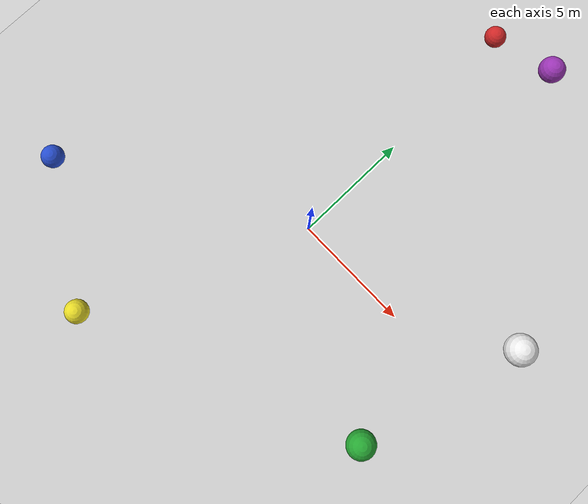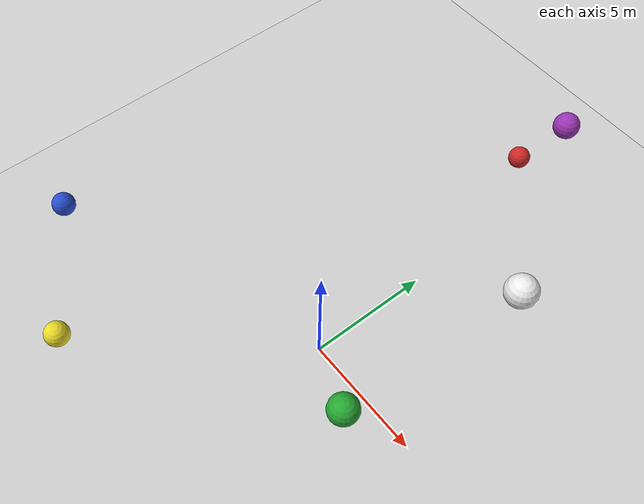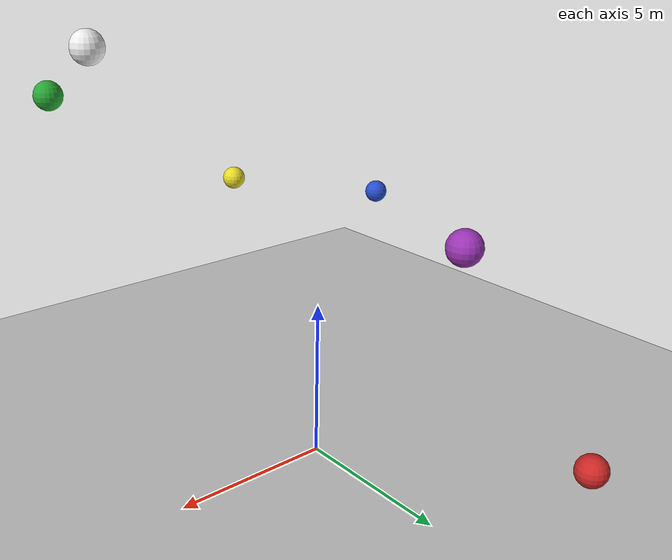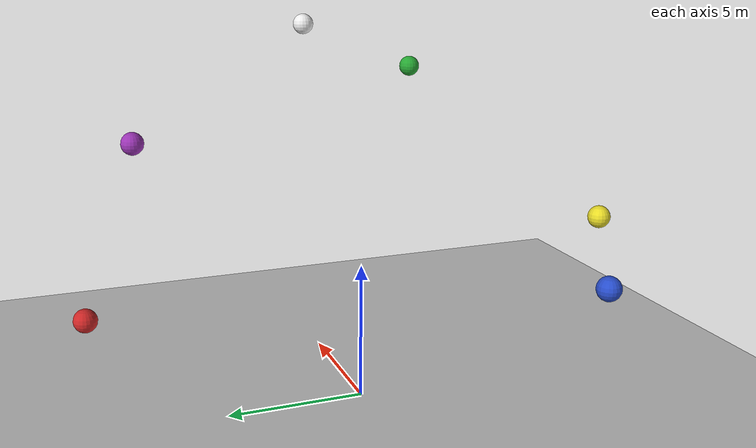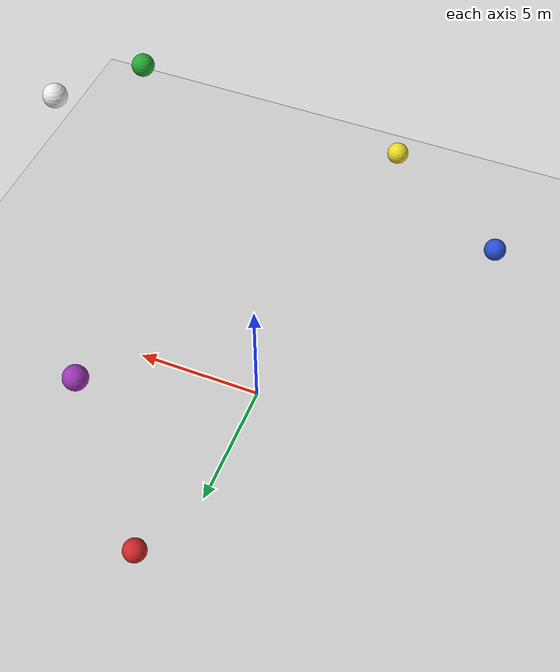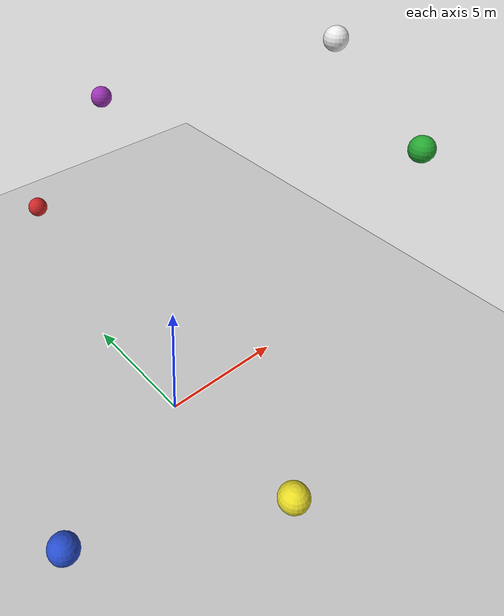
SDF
<?xml version="1.0" ?>
<sdf version="1.4">
  <world name="default">
    <scene>
    <shadows>false</shadows>
    <grid>false</grid>
    </scene>
    <include>
      <uri>model://ground_plane</uri>
    </include>
    <include>
      <uri>model://sun</uri>
    </include>

    <!-- Only one ROS interface plugin is required per world -->
    <plugin name="ros_interface_plugin" filename="librotors_gazebo_ros_interface_plugin.so"/>

    <spherical_coordinates>
      <surface_model>EARTH_WGS84</surface_model>
      <latitude_deg>47.3667</latitude_deg>
      <longitude_deg>8.5500</longitude_deg>
      <elevation>500.0</elevation>
      <heading_deg>0</heading_deg>
    </spherical_coordinates>

    <physics type='ode'>
      <ode>
        <solver>
          <type>quick</type>
          <iters>1000</iters>
          <sor>1.3</sor>
        </solver>
        <constraints>
          <cfm>0</cfm>
          <erp>0.2</erp>
          <contact_max_correcting_vel>100</contact_max_correcting_vel>
          <contact_surface_layer>0.001</contact_surface_layer>
        </constraints>
      </ode>
      <max_step_size>0.002</max_step_size>
      <real_time_factor>0</real_time_factor>
      <real_time_update_rate>1000</real_time_update_rate>
      <gravity>0 0 -9.81</gravity>
    </physics>

    <!-- Obstacle 0: (0.000, 9.583, 4.250), Plugin R=9.583 -->
    <model name='sphere_obstacle_0'>
      <static>false</static>
      <pose>0.000 9.583 4.250 0 0 0</pose> <!-- x y z roll pitch yaw -->
      <link name='link'>
        <kinematic>true</kinematic>
        <collision name='collision'>
          <geometry>
            <sphere><radius>0.4</radius></sphere>
          </geometry>
        </collision>
        <visual name='visual'>
          <geometry>
            <sphere><radius>0.4</radius></sphere>
          </geometry>
          <material>
            <script>
              <uri>file://media/materials/scripts/gazebo.material</uri>
              <name>Gazebo/Red</name>
            </script>
          </material>
        </visual>
      </link>
      <plugin name="circle_motion" filename="libcircle_motion_plugin.so">
        <center_x>0.0</center_x>
        <center_y>0.0</center_y>
        <center_z>4.250</center_z>
        <radius>9.583</radius> <!-- sqrt(x^2+y^2) -->
        <speed>0</speed>
      </plugin>
    </model>

    <!-- Obstacle 1: (-7.281, -5.290, 6.000), Plugin R=9.000 -->
    <model name='sphere_obstacle_1'>
      <static>false</static>
      <pose>-7.281 -5.290 6.000 0 0 0</pose>
      <link name='link'>
        <kinematic>true</kinematic>
        <collision name='collision'>
          <geometry>
            <sphere><radius>0.4</radius></sphere>
          </geometry>
        </collision>
        <visual name='visual'>
          <geometry>
            <sphere><radius>0.4</radius></sphere>
          </geometry>
          <material>
            <script>
              <uri>file://media/materials/scripts/gazebo.material</uri>
              <name>Gazebo/Blue</name>
            </script>
          </material>
        </visual>
      </link>
      <plugin name="circle_motion" filename="libcircle_motion_plugin.so">
        <center_x>0.0</center_x>
        <center_y>0.0</center_y>
        <center_z>6.000</center_z>
        <radius>9.000</radius> <!-- sqrt(x^2+y^2) -->
        <speed>0</speed>
      </plugin>
    </model>

    <!-- Obstacle 2: (-2.601, -8.005, 7.750), Plugin R=8.417 -->
    <model name='sphere_obstacle_2'> <!-- Was sphere_obstacle_3 in original -->
      <static>false</static>
      <pose>-2.601 -8.005 6.750 0 0 0</pose>
      <link name='link'>
        <kinematic>true</kinematic>
        <collision name='collision'>
          <geometry>
            <sphere><radius>0.4</radius></sphere>
          </geometry>
        </collision>
        <visual name='visual'>
          <geometry>
            <sphere><radius>0.4</radius></sphere>
          </geometry>
          <material>
            <script>
              <uri>file://media/materials/scripts/gazebo.material</uri>
              <name>Gazebo/Yellow</name>
            </script>
          </material>
        </visual>
      </link>
      <plugin name="circle_motion" filename="libcircle_motion_plugin.so">
        <center_x>0.0</center_x>
        <center_y>0.0</center_y>
        <center_z>6.750</center_z>
        <radius>8.417</radius> <!-- sqrt(x^2+y^2) -->
        <speed>0</speed>
      </plugin>
    </model>

    <!-- Obstacle 3: (2.421, 7.450, 9.500), Plugin R=7.833 -->
    <model name='sphere_obstacle_3'> <!-- Was sphere_obstacle_4 in original -->
      <static>false</static>
      <pose>2.421 7.450 9.500 0 0 0</pose>
      <link name='link'>
        <kinematic>true</kinematic>
        <collision name='collision'>
          <geometry>
            <sphere><radius>0.4</radius></sphere>
          </geometry>
        </collision>
        <visual name='visual'>
          <geometry>
            <sphere><radius>0.4</radius></sphere>
          </geometry>
          <material>
            <script>
              <uri>file://media/materials/scripts/gazebo.material</uri>
              <name>Gazebo/Purple</name>
            </script>
          </material>
        </visual>
      </link>
      <plugin name="circle_motion" filename="libcircle_motion_plugin.so">
        <center_x>0.0</center_x>
        <center_y>0.0</center_y>
        <center_z>9.500</center_z>
        <radius>7.833</radius> <!-- sqrt(x^2+y^2) -->
        <speed>0</speed>
      </plugin>
    </model>

    <!-- Obstacle 4: (5.865, -4.261, 11.250), Plugin R=7.250 -->
   <model name='sphere_obstacle_4'> <!-- Was sphere_obstacle_5 in original -->
      <static>false</static>
      <pose>5.865 -4.261 11.250 0 0 0</pose>
      <link name='link'>
        <kinematic>true</kinematic>
        <collision name='collision'>
          <geometry>
            <sphere><radius>0.4</radius></sphere>
          </geometry>
        </collision>
        <visual name='visual'>
          <geometry>
            <sphere><radius>0.4</radius></sphere>
          </geometry>
          <material>
            <script>
              <uri>file://media/materials/scripts/gazebo.material</uri>
              <name>Gazebo/Green</name>
            </script>
          </material>
        </visual>
      </link>
      <plugin name="circle_motion" filename="libcircle_motion_plugin.so">
        <center_x>0.0</center_x>
        <center_y>0.0</center_y>
        <center_z>11.250</center_z>
        <radius>7.250</radius> <!-- sqrt(x^2+y^2) -->
        <speed>0</speed>
      </plugin>
    </model>

    <!-- Obstacle 5: (6.667, 0.000, 13.000), Plugin R=6.667 -->
    <model name='sphere_obstacle_5'> <!-- Was sphere_obstacle_6 in original -->
      <static>false</static>
      <pose>6.667 0.000 13.000 0 0 0</pose>
      <link name='link'>
        <kinematic>true</kinematic>
        <collision name='collision'>
          <geometry>
            <sphere><radius>0.4</radius></sphere>
          </geometry>
        </collision>
        <visual name='visual'>
          <geometry>
            <sphere><radius>0.4</radius></sphere>
          </geometry>
          <material>
            <script>
              <uri>file://media/materials/scripts/gazebo.material</uri>
              <name>Gazebo/White</name>
            </script>
          </material>
        </visual>
      </link>
      <plugin name="circle_motion" filename="libcircle_motion_plugin.so">
        <center_x>0.0</center_x>
        <center_y>0.0</center_y>
        <center_z>13.000</center_z>
        <radius>6.667</radius> <!-- sqrt(x^2+y^2) -->
        <speed>0</speed>
      </plugin>
    </model>

 </world>
</sdf>
